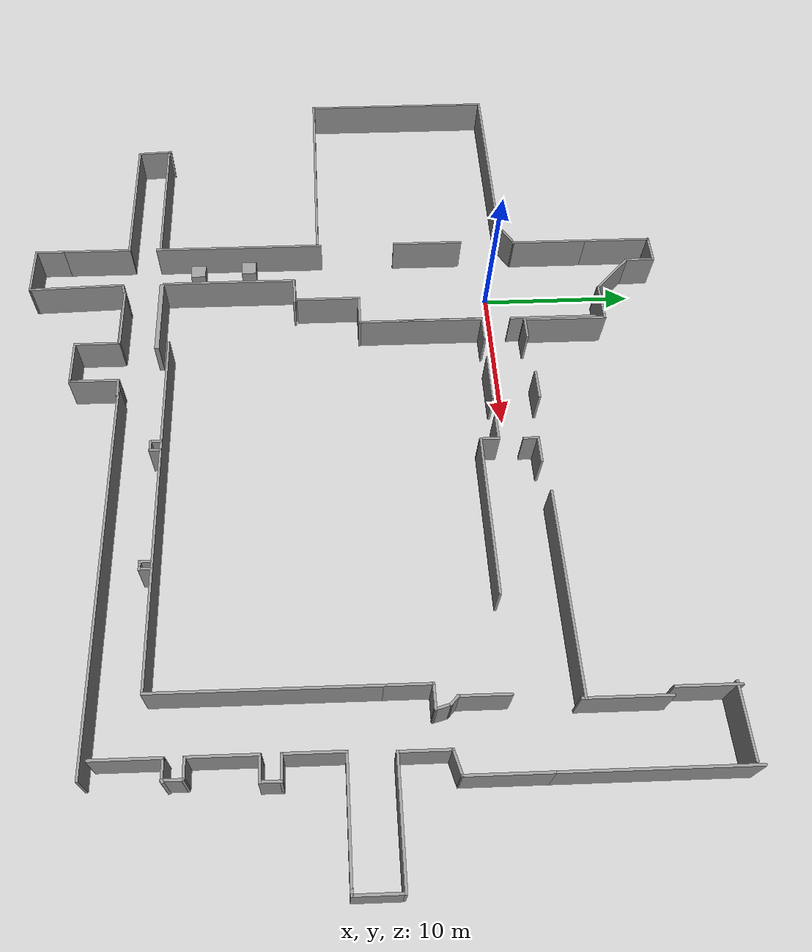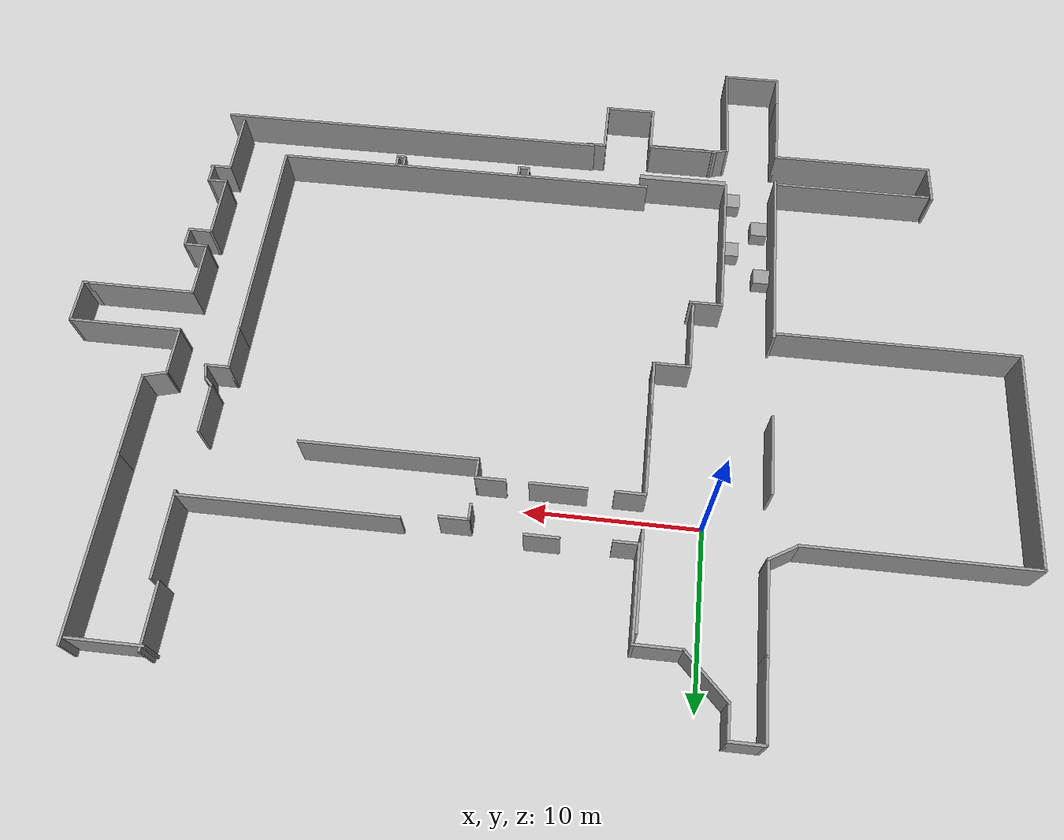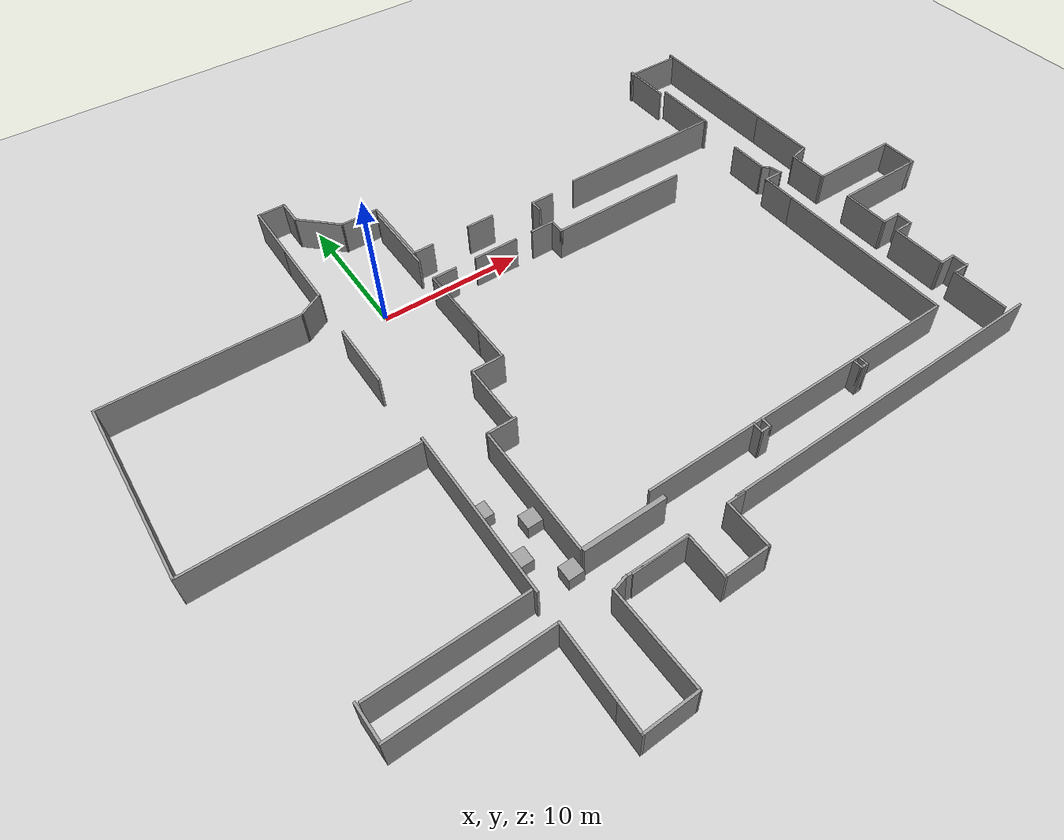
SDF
<sdf version="1.6">
 <world name="default">
  <light name="sun" type="directional">
   <pose>0 0 10 0 -0 0</pose>
   <diffuse>0.8 0.8 0.8 1</diffuse>
   <specular>0.2 0.2 0.2 1</specular>
   <attenuation>
    <range>1000</range>
    <constant>0.9</constant>
    <linear>0.01</linear>
    <quadratic>0.001</quadratic>
   </attenuation>
   <direction>-0.5 0.1 -0.9</direction>
  </light>
  <model name="ground_plane">
   <static>1</static>
   <link name="link">
    <collision name="collision">
     <geometry><plane><normal>0 0 1</normal><size>100 100</size></plane></geometry>
     <surface>
      <contact><collide_bitmask>65535</collide_bitmask></contact>
      <friction><ode><mu>100</mu><mu2>50</mu2></ode></friction>
     </surface>
    </collision>
    <visual name="visual">
     <cast_shadows>0</cast_shadows>
     <geometry><plane><normal>0 0 1</normal><size>100 100</size></plane></geometry>
     <material>
      <script><uri>file://media/materials/scripts/gazebo.material</uri><name>Gazebo/Grey</name></script>
     </material>
    </visual>
   </link>
  </model>
  <gravity>0 0 -9.8</gravity>
  <magnetic_field>6e-06 2.3e-05 -4.2e-05</magnetic_field>
  <atmosphere type="adiabatic"/>
  <physics name="default_physics" default="0" type="ode">
   <max_step_size>0.001</max_step_size>
   <real_time_factor>1</real_time_factor>
   <real_time_update_rate>1000</real_time_update_rate>
  </physics>
  <scene><ambient>0.4 0.4 0.4 1</ambient><background>0.7 0.7 0.7 1</background><shadows>1</shadows></scene>
  <audio><device>default</device></audio>
  <spherical_coordinates>
   <surface_model>EARTH_WGS84</surface_model>
   <latitude_deg>0</latitude_deg>
   <longitude_deg>0</longitude_deg>
   <elevation>0</elevation>
   <heading_deg>0</heading_deg>
  </spherical_coordinates>
  <model name="artificial_env">
   <pose>14.3004 -9.01126 0 0 -0 0</pose>
   <link name="Wall_10">
    <collision name="Wall_10_Collision">
     <geometry><box><size>4.75 0.15 2.5</size></box></geometry>
     <pose>0 0 1.25 0 -0 0</pose>
    </collision>
    <visual name="Wall_10_Visual">
     <pose>0 0 1.25 0 -0 0</pose>
     <geometry><box><size>4.75 0.15 2.5</size></box></geometry>
     <material>
      <script><uri>file://media/materials/scripts/gazebo.material</uri><name>Gazebo/Grey</name></script>
      <ambient>1 1 1 1</ambient>
     </material>
     <meta><layer>0</layer></meta>
    </visual>
    <pose>-17.758 5.05142 0 0 -0 -1.5708</pose>
   </link>
   <link name="Wall_12">
    <collision name="Wall_12_Collision">
     <geometry><box><size>5.75 0.15 2.5</size></box></geometry>
     <pose>0 0 1.25 0 -0 0</pose>
    </collision>
    <visual name="Wall_12_Visual">
     <pose>0 0 1.25 0 -0 0</pose>
     <geometry><box><size>5.75 0.15 2.5</size></box></geometry>
     <material>
      <script><uri>file://media/materials/scripts/gazebo.material</uri><name>Gazebo/Grey</name></script>
      <ambient>1 1 1 1</ambient>
     </material>
     <meta><layer>0</layer></meta>
    </visual>
    <pose>-10.9079 12.928 0 0 -0 1.5708</pose>
   </link>
   <link name="Wall_14">
    <collision name="Wall_14_Collision">
     <geometry><box><size>11.5 0.15 2.5</size></box></geometry>
     <pose>0 0 1.25 0 -0 0</pose>
    </collision>
    <visual name="Wall_14_Visual">
     <pose>0 0 1.25 0 -0 0</pose>
     <geometry><box><size>11.5 0.15 2.5</size></box></geometry>
     <material>
      <script><uri>file://media/materials/scripts/gazebo.material</uri><name>Gazebo/Grey</name></script>
      <ambient>1 1 1 1</ambient>
     </material>
     <meta><layer>0</layer></meta>
    </visual>
    <pose>-17.7755 -8.11839 0 0 -0 -1.5708</pose>
   </link>
   <link name="Wall_28">
    <collision name="Wall_28_Collision">
     <geometry><box><size>4.25 0.15 2.5</size></box></geometry>
     <pose>0 0 1.25 0 -0 0</pose>
    </collision>
    <visual name="Wall_28_Visual">
     <pose>0 0 1.25 0 -0 0</pose>
     <geometry><box><size>4.25 0.15 2.5</size></box></geometry>
     <material>
      <script><uri>file://media/materials/scripts/gazebo.material</uri><name>Gazebo/Grey</name></script>
      <ambient>1 1 1 1</ambient>
     </material>
     <meta><layer>0</layer></meta>
    </visual>
    <pose>-11.8671 -15.728 0 0 -0 3.14159</pose>
   </link>
   <link name="Wall_30">
    <collision name="Wall_30_Collision">
     <geometry><box><size>5.4 0.3 2.5</size></box></geometry>
     <pose>0 0 1.25 0 -0 0</pose>
    </collision>
    <visual name="Wall_30_Visual">
     <pose>0 0 1.25 0 -0 0</pose>
     <geometry><box><size>5.4 0.3 2.5</size></box></geometry>
     <material>
      <script><uri>file://media/materials/scripts/gazebo.material</uri><name>Gazebo/Grey</name></script>
      <ambient>1 1 1 1</ambient>
     </material>
     <meta><layer>0</layer></meta>
    </visual>
    <pose>-11.9185 -13.2739 0 0 -0 0</pose>
   </link>
   <link name="Wall_4">
    <collision name="Wall_4_Collision">
     <geometry><box><size>5.5 0.15 2.5</size></box></geometry>
     <pose>0 0 1.25 0 -0 0</pose>
    </collision>
    <visual name="Wall_4_Visual">
     <pose>0 0 1.25 0 -0 0</pose>
     <geometry><box><size>5.5 0.15 2.5</size></box></geometry>
     <material>
      <script><uri>file://media/materials/scripts/gazebo.material</uri><name>Gazebo/Grey</name></script>
      <ambient>1 1 1 1</ambient>
     </material>
     <meta><layer>0</layer></meta>
    </visual>
    <pose>-10.9304 5.41626 0 0 -0 -1.5708</pose>
   </link>
   <link name="Wall_42">
    <collision name="Wall_42_Collision">
     <geometry><box><size>24 0.15 2.5</size></box></geometry>
     <pose>0 0 1.25 0 -0 0</pose>
    </collision>
    <visual name="Wall_42_Visual">
     <pose>0 0 1.25 0 -0 0</pose>
     <geometry><box><size>24 0.15 2.5</size></box></geometry>
     <material>
      <script><uri>file://media/materials/scripts/gazebo.material</uri><name>Gazebo/Grey</name></script>
      <ambient>1 1 1 1</ambient>
     </material>
     <meta><layer>0</layer></meta>
    </visual>
    <pose>5.85049 -15.4683 0 0 -0 0</pose>
   </link>
   <static>1</static>
  </model>
  <model name="Untitled">
   <pose>10.0384 -9.8235 0 0 -0 0</pose>
   <link name="Wall_10">
    <collision name="Wall_10_Collision">
     <geometry><box><size>2 0.15 2.5</size></box></geometry>
     <pose>0 0 1.25 0 -0 0</pose>
    </collision>
    <visual name="Wall_10_Visual">
     <pose>0 0 1.25 0 -0 0</pose>
     <geometry><box><size>2 0.15 2.5</size></box></geometry>
     <material>
      <script><uri>file://media/materials/scripts/gazebo.material</uri><name>Gazebo/Grey</name></script>
      <ambient>1 1 1 1</ambient>
     </material>
     <meta><layer>0</layer></meta>
    </visual>
    <pose>-11.4683 20.4534 0 0 -0 -1.5708</pose>
   </link>
   <link name="Wall_100">
    <collision name="Wall_100_Collision">
     <geometry><box><size>6.75 0.15 2.5</size></box></geometry>
     <pose>0 0 1.25 0 -0 0</pose>
    </collision>
    <visual name="Wall_100_Visual">
     <pose>0 0 1.25 0 -0 0</pose>
     <geometry><box><size>6.75 0.15 2.5</size></box></geometry>
     <material>
      <script><uri>file://media/materials/scripts/gazebo.material</uri><name>Gazebo/Grey</name></script>
      <ambient>1 1 1 1</ambient>
     </material>
     <meta><layer>0</layer></meta>
    </visual>
    <pose>24.4804 1.61539 0 0 -0 3.14159</pose>
   </link>
   <link name="Wall_101">
    <collision name="Wall_101_Collision">
     <geometry><box><size>3 0.15 2.5</size></box></geometry>
     <pose>0 0 1.25 0 -0 0</pose>
    </collision>
    <visual name="Wall_101_Visual">
     <pose>0 0 1.25 0 -0 0</pose>
     <geometry><box><size>3 0.15 2.5</size></box></geometry>
     <material>
      <script><uri>file://media/materials/scripts/gazebo.material</uri><name>Gazebo/Grey</name></script>
      <ambient>1 1 1 1</ambient>
     </material>
     <meta><layer>0</layer></meta>
    </visual>
    <pose>21.1804 3.04039 0 0 -0 1.5708</pose>
   </link>
   <link name="Wall_103">
    <collision name="Wall_103_Collision">
     <geometry><box><size>2.75 0.15 2.5</size></box></geometry>
     <pose>0 0 1.25 0 -0 0</pose>
    </collision>
    <visual name="Wall_103_Visual">
     <pose>0 0 1.25 0 -0 0</pose>
     <geometry><box><size>2.75 0.15 2.5</size></box></geometry>
     <material>
      <script><uri>file://media/materials/scripts/gazebo.material</uri><name>Gazebo/Grey</name></script>
      <ambient>1 1 1 1</ambient>
     </material>
     <meta><layer>0</layer></meta>
    </visual>
    <pose>17.7291 2.44864 0 0 -0 1.5708</pose>
   </link>
   <link name="Wall_104">
    <collision name="Wall_104_Collision">
     <geometry><box><size>1.5 0.15 2.5</size></box></geometry>
     <pose>0 0 1.25 0 -0 0</pose>
    </collision>
    <visual name="Wall_104_Visual">
     <pose>0 0 1.25 0 -0 0</pose>
     <geometry><box><size>1.5 0.15 2.5</size></box></geometry>
     <material>
      <script><uri>file://media/materials/scripts/gazebo.material</uri><name>Gazebo/Grey</name></script>
      <ambient>1 1 1 1</ambient>
     </material>
     <meta><layer>0</layer></meta>
    </visual>
    <pose>18.4041 3.74864 0 0 -0 0</pose>
   </link>
   <link name="Wall_105">
    <collision name="Wall_105_Collision">
     <geometry><box><size>1 0.15 2.5</size></box></geometry>
     <pose>0 0 1.25 0 -0 0</pose>
    </collision>
    <visual name="Wall_105_Visual">
     <pose>0 0 1.25 0 -0 0</pose>
     <geometry><box><size>1 0.15 2.5</size></box></geometry>
     <material>
      <script><uri>file://media/materials/scripts/gazebo.material</uri><name>Gazebo/Grey</name></script>
      <ambient>1 1 1 1</ambient>
     </material>
     <meta><layer>0</layer></meta>
    </visual>
    <pose>18.9691 4.15916 0 0 -0 1.8326</pose>
   </link>
   <link name="Wall_106">
    <collision name="Wall_106_Collision">
     <geometry><box><size>0.75 0.15 2.5</size></box></geometry>
     <pose>0 0 1.25 0 -0 0</pose>
    </collision>
    <visual name="Wall_106_Visual">
     <pose>0 0 1.25 0 -0 0</pose>
     <geometry><box><size>0.75 0.15 2.5</size></box></geometry>
     <material>
      <script><uri>file://media/materials/scripts/gazebo.material</uri><name>Gazebo/Grey</name></script>
      <ambient>1 1 1 1</ambient>
     </material>
     <meta><layer>0</layer></meta>
    </visual>
    <pose>18.647 4.78181 0 0 -0 2.35619</pose>
   </link>
   <link name="Wall_107">
    <collision name="Wall_107_Collision">
     <geometry><box><size>3 0.15 2.5</size></box></geometry>
     <pose>0 0 1.25 0 -0 0</pose>
    </collision>
    <visual name="Wall_107_Visual">
     <pose>0 0 1.25 0 -0 0</pose>
     <geometry><box><size>3 0.15 2.5</size></box></geometry>
     <material>
      <script><uri>file://media/materials/scripts/gazebo.material</uri><name>Gazebo/Grey</name></script>
      <ambient>1 1 1 1</ambient>
     </material>
     <meta><layer>0</layer></meta>
    </visual>
    <pose>18.4348 6.41894 0 0 -0 1.5708</pose>
   </link>
   <link name="Wall_11">
    <collision name="Wall_11_Collision">
     <geometry><box><size>3.5 0.15 2.5</size></box></geometry>
     <pose>0 0 1.25 0 -0 0</pose>
    </collision>
    <visual name="Wall_11_Visual">
     <pose>0 0 1.25 0 -0 0</pose>
     <geometry><box><size>3.5 0.15 2.5</size></box></geometry>
     <material>
      <script><uri>file://media/materials/scripts/gazebo.material</uri><name>Gazebo/Grey</name></script>
      <ambient>1 1 1 1</ambient>
     </material>
     <meta><layer>0</layer></meta>
    </visual>
    <pose>-10.2839 18.344 0 0 -0 -0.785398</pose>
   </link>
   <link name="Wall_110">
    <collision name="Wall_110_Collision">
     <geometry><box><size>1.5 0.15 2.5</size></box></geometry>
     <pose>0 0 1.25 0 -0 0</pose>
    </collision>
    <visual name="Wall_110_Visual">
     <pose>0 0 1.25 0 -0 0</pose>
     <geometry><box><size>1.5 0.15 2.5</size></box></geometry>
     <material>
      <script><uri>file://media/materials/scripts/gazebo.material</uri><name>Gazebo/Grey</name></script>
      <ambient>1 1 1 1</ambient>
     </material>
     <meta><layer>0</layer></meta>
    </visual>
    <pose>21.8324 4.64009 0 0 -0 0.261799</pose>
   </link>
   <link name="Wall_111">
    <collision name="Wall_111_Collision">
     <geometry><box><size>5 0.15 2.5</size></box></geometry>
     <pose>0 0 1.25 0 -0 0</pose>
    </collision>
    <visual name="Wall_111_Visual">
     <pose>0 0 1.25 0 -0 0</pose>
     <geometry><box><size>5 0.15 2.5</size></box></geometry>
     <material>
      <script><uri>file://media/materials/scripts/gazebo.material</uri><name>Gazebo/Grey</name></script>
      <ambient>1 1 1 1</ambient>
     </material>
     <meta><layer>0</layer></meta>
    </visual>
    <pose>22.4844 7.2398 0 0 -0 1.5708</pose>
   </link>
   <link name="Wall_112">
    <collision name="Wall_112_Collision">
     <geometry><box><size>10.75 0.15 2.5</size></box></geometry>
     <pose>0 0 1.25 0 -0 0</pose>
    </collision>
    <visual name="Wall_112_Visual">
     <pose>0 0 1.25 0 -0 0</pose>
     <geometry><box><size>10.75 0.15 2.5</size></box></geometry>
     <material>
      <script><uri>file://media/materials/scripts/gazebo.material</uri><name>Gazebo/Grey</name></script>
      <ambient>1 1 1 1</ambient>
     </material>
     <meta><layer>0</layer></meta>
    </visual>
    <pose>22.4844 14.9648 0 0 -0 1.5708</pose>
   </link>
   <link name="Wall_114">
    <collision name="Wall_114_Collision">
     <geometry><box><size>4.25 0.15 2.5</size></box></geometry>
     <pose>0 0 1.25 0 -0 0</pose>
    </collision>
    <visual name="Wall_114_Visual">
     <pose>0 0 1.25 0 -0 0</pose>
     <geometry><box><size>4.25 0.15 2.5</size></box></geometry>
     <material>
      <script><uri>file://media/materials/scripts/gazebo.material</uri><name>Gazebo/Grey</name></script>
      <ambient>1 1 1 1</ambient>
     </material>
     <meta><layer>0</layer></meta>
    </visual>
    <pose>20.2302 19.902 0 0 -0 3.14159</pose>
   </link>
   <link name="Wall_116">
    <collision name="Wall_116_Collision">
     <geometry><box><size>3.75 0.15 2.5</size></box></geometry>
     <pose>0 0 1.25 0 -0 0</pose>
    </collision>
    <visual name="Wall_116_Visual">
     <pose>0 0 1.25 0 -0 0</pose>
     <geometry><box><size>3.75 0.15 2.5</size></box></geometry>
     <material>
      <script><uri>file://media/materials/scripts/gazebo.material</uri><name>Gazebo/Grey</name></script>
      <ambient>1 1 1 1</ambient>
     </material>
     <meta><layer>0</layer></meta>
    </visual>
    <pose>18.32 18.3495 0 0 -0 -1.5708</pose>
   </link>
   <link name="Wall_118">
    <collision name="Wall_118_Collision">
     <geometry><box><size>5 0.15 2.5</size></box></geometry>
     <pose>0 0 1.25 0 -0 0</pose>
    </collision>
    <visual name="Wall_118_Visual">
     <pose>0 0 1.25 0 -0 0</pose>
     <geometry><box><size>5 0.15 2.5</size></box></geometry>
     <material>
      <script><uri>file://media/materials/scripts/gazebo.material</uri><name>Gazebo/Grey</name></script>
      <ambient>1 1 1 1</ambient>
     </material>
     <meta><layer>0</layer></meta>
    </visual>
    <pose>18.7779 13.9562 0 0 -0 -1.5708</pose>
   </link>
   <link name="Wall_12">
    <collision name="Wall_12_Collision">
     <geometry><box><size>2.75 0.15 2.5</size></box></geometry>
     <pose>0 0 1.25 0 -0 0</pose>
    </collision>
    <visual name="Wall_12_Visual">
     <pose>0 0 1.25 0 -0 0</pose>
     <geometry><box><size>2.75 0.15 2.5</size></box></geometry>
     <material>
      <script><uri>file://media/materials/scripts/gazebo.material</uri><name>Gazebo/Grey</name></script>
      <ambient>1 1 1 1</ambient>
     </material>
     <meta><layer>0</layer></meta>
    </visual>
    <pose>-7.79948 17.1596 0 0 -0 0</pose>
   </link>
   <link name="Wall_120">
    <collision name="Wall_120_Collision">
     <geometry><box><size>12.5 0.15 2.5</size></box></geometry>
     <pose>0 0 1.25 0 -0 0</pose>
    </collision>
    <visual name="Wall_120_Visual">
     <pose>0 0 1.25 0 -0 0</pose>
     <geometry><box><size>12.5 0.15 2.5</size></box></geometry>
     <material>
      <script><uri>file://media/materials/scripts/gazebo.material</uri><name>Gazebo/Grey</name></script>
      <ambient>1 1 1 1</ambient>
     </material>
     <meta><layer>0</layer></meta>
    </visual>
    <pose>12.6016 11.7118 0 0 -0 3.14159</pose>
   </link>
   <link name="Wall_122">
    <collision name="Wall_122_Collision">
     <geometry><box><size>1.75 0.15 2.5</size></box></geometry>
     <pose>0 0 1.25 0 -0 0</pose>
    </collision>
    <visual name="Wall_122_Visual">
     <pose>0 0 1.25 0 -0 0</pose>
     <geometry><box><size>1.75 0.15 2.5</size></box></geometry>
     <material>
      <script><uri>file://media/materials/scripts/gazebo.material</uri><name>Gazebo/Grey</name></script>
      <ambient>1 1 1 1</ambient>
     </material>
     <meta><layer>0</layer></meta>
    </visual>
    <pose>3.49469 11.4272 0 0 -0 0</pose>
   </link>
   <link name="Wall_124">
    <collision name="Wall_124_Collision">
     <geometry><box><size>1 0.15 2.5</size></box></geometry>
     <pose>0 0 1.25 0 -0 0</pose>
    </collision>
    <visual name="Wall_124_Visual">
     <pose>0 0 1.25 0 -0 0</pose>
     <geometry><box><size>1 0.15 2.5</size></box></geometry>
     <material>
      <script><uri>file://media/materials/scripts/gazebo.material</uri><name>Gazebo/Grey</name></script>
      <ambient>1 1 1 1</ambient>
     </material>
     <meta><layer>0</layer></meta>
    </visual>
    <pose>2.69469 11.0022 0 0 -0 -1.5708</pose>
   </link>
   <link name="Wall_13">
    <collision name="Wall_13_Collision">
     <geometry><box><size>5.5 0.15 2.5</size></box></geometry>
     <pose>0 0 1.25 0 -0 0</pose>
    </collision>
    <visual name="Wall_13_Visual">
     <pose>0 0 1.25 0 -0 0</pose>
     <geometry><box><size>5.5 0.15 2.5</size></box></geometry>
     <material>
      <script><uri>file://media/materials/scripts/gazebo.material</uri><name>Gazebo/Grey</name></script>
      <ambient>1 1 1 1</ambient>
     </material>
     <meta><layer>0</layer></meta>
    </visual>
    <pose>-6.49948 14.4846 0 0 -0 -1.5708</pose>
   </link>
   <link name="Wall_16">
    <collision name="Wall_16_Collision">
     <geometry><box><size>1.5 0.15 2.5</size></box></geometry>
     <pose>0 0 1.25 0 -0 0</pose>
    </collision>
    <visual name="Wall_16_Visual">
     <pose>0 0 1.25 0 -0 0</pose>
     <geometry><box><size>1.5 0.15 2.5</size></box></geometry>
     <material>
      <script><uri>file://media/materials/scripts/gazebo.material</uri><name>Gazebo/Grey</name></script>
      <ambient>1 1 1 1</ambient>
     </material>
     <meta><layer>0</layer></meta>
    </visual>
    <pose>-5.82449 11.8096 0 0 -0 0</pose>
   </link>
   <link name="Wall_20">
    <collision name="Wall_20_Collision">
     <geometry><box><size>2 0.15 2.5</size></box></geometry>
     <pose>0 0 1.25 0 -0 0</pose>
    </collision>
    <visual name="Wall_20_Visual">
     <pose>0 0 1.25 0 -0 0</pose>
     <geometry><box><size>2 0.15 2.5</size></box></geometry>
     <material>
      <script><uri>file://media/materials/scripts/gazebo.material</uri><name>Gazebo/Grey</name></script>
      <ambient>1 1 1 1</ambient>
     </material>
     <meta><layer>0</layer></meta>
    </visual>
    <pose>-1.29304 11.9436 0 0 -0 0</pose>
   </link>
   <link name="Wall_22">
    <collision name="Wall_22_Collision">
     <geometry><box><size>3.25 0.15 2.5</size></box></geometry>
     <pose>0 0 1.25 0 -0 0</pose>
    </collision>
    <visual name="Wall_22_Visual">
     <pose>0 0 1.25 0 -0 0</pose>
     <geometry><box><size>3.25 0.15 2.5</size></box></geometry>
     <material>
      <script><uri>file://media/materials/scripts/gazebo.material</uri><name>Gazebo/Grey</name></script>
      <ambient>1 1 1 1</ambient>
     </material>
     <meta><layer>0</layer></meta>
    </visual>
    <pose>-1.8986 8.99021 0 0 -0 0</pose>
   </link>
   <link name="Wall_24">
    <collision name="Wall_24_Collision">
     <geometry><box><size>1.75 0.15 2.5</size></box></geometry>
     <pose>0 0 1.25 0 -0 0</pose>
    </collision>
    <visual name="Wall_24_Visual">
     <pose>0 0 1.25 0 -0 0</pose>
     <geometry><box><size>1.75 0.15 2.5</size></box></geometry>
     <material>
      <script><uri>file://media/materials/scripts/gazebo.material</uri><name>Gazebo/Grey</name></script>
      <ambient>1 1 1 1</ambient>
     </material>
     <meta><layer>0</layer></meta>
    </visual>
    <pose>-5.84832 8.99021 0 0 -0 3.14159</pose>
   </link>
   <link name="Wall_26">
    <collision name="Wall_26_Collision">
     <geometry><box><size>1.75 0.15 2.5</size></box></geometry>
     <pose>0 0 1.25 0 -0 0</pose>
    </collision>
    <visual name="Wall_26_Visual">
     <pose>0 0 1.25 0 -0 0</pose>
     <geometry><box><size>1.75 0.15 2.5</size></box></geometry>
     <material>
      <script><uri>file://media/materials/scripts/gazebo.material</uri><name>Gazebo/Grey</name></script>
      <ambient>1 1 1 1</ambient>
     </material>
     <meta><layer>0</layer></meta>
    </visual>
    <pose>1.84294 8.99021 0 0 -0 0</pose>
   </link>
   <link name="Wall_28">
    <collision name="Wall_28_Collision">
     <geometry><box><size>1.25 0.15 2.5</size></box></geometry>
     <pose>0 0 1.25 0 -0 0</pose>
    </collision>
    <visual name="Wall_28_Visual">
     <pose>0 0 1.25 0 -0 0</pose>
     <geometry><box><size>1.25 0.15 2.5</size></box></geometry>
     <material>
      <script><uri>file://media/materials/scripts/gazebo.material</uri><name>Gazebo/Grey</name></script>
      <ambient>1 1 1 1</ambient>
     </material>
     <meta><layer>0</layer></meta>
    </visual>
    <pose>2.64294 8.44021 0 0 -0 -1.5708</pose>
   </link>
   <link name="Wall_30">
    <collision name="Wall_30_Collision">
     <geometry><box><size>10.25 0.15 2.5</size></box></geometry>
     <pose>0 0 1.25 0 -0 0</pose>
    </collision>
    <visual name="Wall_30_Visual">
     <pose>0 0 1.25 0 -0 0</pose>
     <geometry><box><size>10.25 0.15 2.5</size></box></geometry>
     <material>
      <script><uri>file://media/materials/scripts/gazebo.material</uri><name>Gazebo/Grey</name></script>
      <ambient>1 1 1 1</ambient>
     </material>
     <meta><layer>0</layer></meta>
    </visual>
    <pose>7.69294 7.89021 0 0 -0 0</pose>
   </link>
   <link name="Wall_32">
    <collision name="Wall_32_Collision">
     <geometry><box><size>13 0.15 2.5</size></box></geometry>
     <pose>0 0 1.25 0 -0 0</pose>
    </collision>
    <visual name="Wall_32_Visual">
     <pose>0 0 1.25 0 -0 0</pose>
     <geometry><box><size>13 0.15 2.5</size></box></geometry>
     <material>
      <script><uri>file://media/materials/scripts/gazebo.material</uri><name>Gazebo/Grey</name></script>
      <ambient>1 1 1 1</ambient>
     </material>
     <meta><layer>0</layer></meta>
    </visual>
    <pose>-21.3554 11.0034 0 0 -0 3.14159</pose>
   </link>
   <link name="Wall_33">
    <collision name="Wall_33_Collision">
     <geometry><box><size>13 0.15 2.5</size></box></geometry>
     <pose>0 0 1.25 0 -0 0</pose>
    </collision>
    <visual name="Wall_33_Visual">
     <pose>0 0 1.25 0 -0 0</pose>
     <geometry><box><size>13 0.15 2.5</size></box></geometry>
     <material>
      <script><uri>file://media/materials/scripts/gazebo.material</uri><name>Gazebo/Grey</name></script>
      <ambient>1 1 1 1</ambient>
     </material>
     <meta><layer>0</layer></meta>
    </visual>
    <pose>-27.7804 4.57839 0 0 -0 -1.5708</pose>
   </link>
   <link name="Wall_35">
    <collision name="Wall_35_Collision">
     <geometry><box><size>14.25 0.15 2.5</size></box></geometry>
     <pose>0 0 1.25 0 -0 0</pose>
    </collision>
    <visual name="Wall_35_Visual">
     <pose>0 0 1.25 0 -0 0</pose>
     <geometry><box><size>14.25 0.15 2.5</size></box></geometry>
     <material>
      <script><uri>file://media/materials/scripts/gazebo.material</uri><name>Gazebo/Grey</name></script>
      <ambient>1 1 1 1</ambient>
     </material>
     <meta><layer>0</layer></meta>
    </visual>
    <pose>-20.7304 -1.84661 0 0 -0 0</pose>
   </link>
   <link name="Wall_37">
    <collision name="Wall_37_Collision">
     <geometry><box><size>8.25 0.15 2.5</size></box></geometry>
     <pose>0 0 1.25 0 -0 0</pose>
    </collision>
    <visual name="Wall_37_Visual">
     <pose>0 0 1.25 0 -0 0</pose>
     <geometry><box><size>8.25 0.15 2.5</size></box></geometry>
     <material>
      <script><uri>file://media/materials/scripts/gazebo.material</uri><name>Gazebo/Grey</name></script>
      <ambient>1 1 1 1</ambient>
     </material>
     <meta><layer>0</layer></meta>
    </visual>
    <pose>-6.64832 4.94021 0 0 -0 -1.5708</pose>
   </link>
   <link name="Wall_4">
    <collision name="Wall_4_Collision">
     <geometry><box><size>2 0.15 2.5</size></box></geometry>
     <pose>0 0 1.25 0 -0 0</pose>
    </collision>
    <visual name="Wall_4_Visual">
     <pose>0 0 1.25 0 -0 0</pose>
     <geometry><box><size>2 0.15 2.5</size></box></geometry>
     <material>
      <script><uri>file://media/materials/scripts/gazebo.material</uri><name>Gazebo/Grey</name></script>
      <ambient>1 1 1 1</ambient>
     </material>
     <meta><layer>0</layer></meta>
    </visual>
    <pose>-14.1294 11.4659 0 0 -0 0.523599</pose>
   </link>
   <link name="Wall_40">
    <collision name="Wall_40_Collision">
     <geometry><box><size>2 0.15 2.5</size></box></geometry>
     <pose>0 0 1.25 0 -0 0</pose>
    </collision>
    <visual name="Wall_40_Visual">
     <pose>0 0 1.25 0 -0 0</pose>
     <geometry><box><size>2 0.15 2.5</size></box></geometry>
     <material>
      <script><uri>file://media/materials/scripts/gazebo.material</uri><name>Gazebo/Grey</name></script>
      <ambient>1 1 1 1</ambient>
     </material>
     <meta><layer>0</layer></meta>
    </visual>
    <pose>-9.47674 -3.48063 0 0 -0 3.14159</pose>
   </link>
   <link name="Wall_42">
    <collision name="Wall_42_Collision">
     <geometry><box><size>4.25 0.15 2.5</size></box></geometry>
     <pose>0 0 1.25 0 -0 0</pose>
    </collision>
    <visual name="Wall_42_Visual">
     <pose>0 0 1.25 0 -0 0</pose>
     <geometry><box><size>4.25 0.15 2.5</size></box></geometry>
     <material>
      <script><uri>file://media/materials/scripts/gazebo.material</uri><name>Gazebo/Grey</name></script>
      <ambient>1 1 1 1</ambient>
     </material>
     <meta><layer>0</layer></meta>
    </visual>
    <pose>-8.71448 -1.18652 0 0 -0 1.5708</pose>
   </link>
   <link name="Wall_43">
    <collision name="Wall_43_Collision">
     <geometry><box><size>2.25 0.15 2.5</size></box></geometry>
     <pose>0 0 1.25 0 -0 0</pose>
    </collision>
    <visual name="Wall_43_Visual">
     <pose>0 0 1.25 0 -0 0</pose>
     <geometry><box><size>2.25 0.15 2.5</size></box></geometry>
     <material>
      <script><uri>file://media/materials/scripts/gazebo.material</uri><name>Gazebo/Grey</name></script>
      <ambient>1 1 1 1</ambient>
     </material>
     <meta><layer>0</layer></meta>
    </visual>
    <pose>-7.66448 0.863483 0 0 -0 0</pose>
   </link>
   <link name="Wall_45">
    <collision name="Wall_45_Collision">
     <geometry><box><size>9 0.15 2.5</size></box></geometry>
     <pose>0 0 1.25 0 -0 0</pose>
    </collision>
    <visual name="Wall_45_Visual">
     <pose>0 0 1.25 0 -0 0</pose>
     <geometry><box><size>9 0.15 2.5</size></box></geometry>
     <material>
      <script><uri>file://media/materials/scripts/gazebo.material</uri><name>Gazebo/Grey</name></script>
      <ambient>1 1 1 1</ambient>
     </material>
     <meta><layer>0</layer></meta>
    </visual>
    <pose>-10.4017 -7.90563 0 0 -0 -1.5708</pose>
   </link>
   <link name="Wall_47">
    <collision name="Wall_47_Collision">
     <geometry><box><size>9.5 0.15 2.5</size></box></geometry>
     <pose>0 0 1.25 0 -0 0</pose>
    </collision>
    <visual name="Wall_47_Visual">
     <pose>0 0 1.25 0 -0 0</pose>
     <geometry><box><size>9.5 0.15 2.5</size></box></geometry>
     <material>
      <script><uri>file://media/materials/scripts/gazebo.material</uri><name>Gazebo/Grey</name></script>
      <ambient>1 1 1 1</ambient>
     </material>
     <meta><layer>0</layer></meta>
    </visual>
    <pose>-18.3557 -12.7566 0 0 -0 3.14159</pose>
   </link>
   <link name="Wall_49">
    <collision name="Wall_49_Collision">
     <geometry><box><size>2.32222 0.15 2.5</size></box></geometry>
     <pose>0 0 1.25 0 -0 0</pose>
    </collision>
    <visual name="Wall_49_Visual">
     <pose>0 0 1.25 0 -0 0</pose>
     <geometry><box><size>2.32222 0.15 2.5</size></box></geometry>
     <material>
      <script><uri>file://media/materials/scripts/gazebo.material</uri><name>Gazebo/Grey</name></script>
      <ambient>1 1 1 1</ambient>
     </material>
     <meta><layer>0</layer></meta>
    </visual>
    <pose>-23.2044 -13.7338 0 0 -0 -1.52123</pose>
   </link>
   <link name="Wall_50">
    <collision name="Wall_50_Collision">
     <geometry><box><size>9.75 0.15 2.5</size></box></geometry>
     <pose>0 0 1.25 0 -0 0</pose>
    </collision>
    <visual name="Wall_50_Visual">
     <pose>0 0 1.25 0 -0 0</pose>
     <geometry><box><size>9.75 0.15 2.5</size></box></geometry>
     <material>
      <script><uri>file://media/materials/scripts/gazebo.material</uri><name>Gazebo/Grey</name></script>
      <ambient>1 1 1 1</ambient>
     </material>
     <meta><layer>0</layer></meta>
    </visual>
    <pose>-18.3506 -14.9262 0 0 -0 0</pose>
   </link>
   <link name="Wall_52">
    <collision name="Wall_52_Collision">
     <geometry><box><size>4.75 0.15 2.5</size></box></geometry>
     <pose>0 0 1.25 0 -0 0</pose>
    </collision>
    <visual name="Wall_52_Visual">
     <pose>0 0 1.25 0 -0 0</pose>
     <geometry><box><size>4.75 0.15 2.5</size></box></geometry>
     <material>
      <script><uri>file://media/materials/scripts/gazebo.material</uri><name>Gazebo/Grey</name></script>
      <ambient>1 1 1 1</ambient>
     </material>
     <meta><layer>0</layer></meta>
    </visual>
    <pose>-13.5506 -17.2262 0 0 -0 -1.5708</pose>
   </link>
   <link name="Wall_53">
    <collision name="Wall_53_Collision">
     <geometry><box><size>2 0.15 2.5</size></box></geometry>
     <pose>0 0 1.25 0 -0 0</pose>
    </collision>
    <visual name="Wall_53_Visual">
     <pose>0 0 1.25 0 -0 0</pose>
     <geometry><box><size>2 0.15 2.5</size></box></geometry>
     <material>
      <script><uri>file://media/materials/scripts/gazebo.material</uri><name>Gazebo/Grey</name></script>
      <ambient>1 1 1 1</ambient>
     </material>
     <meta><layer>0</layer></meta>
    </visual>
    <pose>-13.5506 -20.4512 0 0 -0 -1.5708</pose>
   </link>
   <link name="Wall_54">
    <collision name="Wall_54_Collision">
     <geometry><box><size>3.5 0.15 2.5</size></box></geometry>
     <pose>0 0 1.25 0 -0 0</pose>
    </collision>
    <visual name="Wall_54_Visual">
     <pose>0 0 1.25 0 -0 0</pose>
     <geometry><box><size>3.5 0.15 2.5</size></box></geometry>
     <material>
      <script><uri>file://media/materials/scripts/gazebo.material</uri><name>Gazebo/Grey</name></script>
      <ambient>1 1 1 1</ambient>
     </material>
     <meta><layer>0</layer></meta>
    </visual>
    <pose>-11.8756 -21.3762 0 0 -0 0</pose>
   </link>
   <link name="Wall_55">
    <collision name="Wall_55_Collision">
     <geometry><box><size>6.40922 0.15 2.5</size></box></geometry>
     <pose>0 0 1.25 0 -0 0</pose>
    </collision>
    <visual name="Wall_55_Visual">
     <pose>0 0 1.25 0 -0 0</pose>
     <geometry><box><size>6.40922 0.15 2.5</size></box></geometry>
     <material>
      <script><uri>file://media/materials/scripts/gazebo.material</uri><name>Gazebo/Grey</name></script>
      <ambient>1 1 1 1</ambient>
     </material>
     <meta><layer>0</layer></meta>
    </visual>
    <pose>-10.2942 -18.248 0 0 -0 1.6007</pose>
   </link>
   <link name="Wall_56">
    <collision name="Wall_56_Collision">
     <geometry><box><size>1 0.15 2.5</size></box></geometry>
     <pose>0 0 1.25 0 -0 0</pose>
    </collision>
    <visual name="Wall_56_Visual">
     <pose>0 0 1.25 0 -0 0</pose>
     <geometry><box><size>1 0.15 2.5</size></box></geometry>
     <material>
      <script><uri>file://media/materials/scripts/gazebo.material</uri><name>Gazebo/Grey</name></script>
      <ambient>1 1 1 1</ambient>
     </material>
     <meta><layer>0</layer></meta>
    </visual>
    <pose>-9.88368 -15.0098 0 0 -0 0.261799</pose>
   </link>
   <link name="Wall_58">
    <collision name="Wall_58_Collision">
     <geometry><box><size>3.75 0.15 2.5</size></box></geometry>
     <pose>0 0 1.25 0 -0 0</pose>
    </collision>
    <visual name="Wall_58_Visual">
     <pose>0 0 1.25 0 -0 0</pose>
     <geometry><box><size>3.75 0.15 2.5</size></box></geometry>
     <material>
      <script><uri>file://media/materials/scripts/gazebo.material</uri><name>Gazebo/Grey</name></script>
      <ambient>1 1 1 1</ambient>
     </material>
     <meta><layer>0</layer></meta>
    </visual>
    <pose>-7.27116 -14.9747 0 0 -0 0</pose>
   </link>
   <link name="Wall_59">
    <collision name="Wall_59_Collision">
     <geometry><box><size>3 0.15 2.5</size></box></geometry>
     <pose>0 0 1.25 0 -0 0</pose>
    </collision>
    <visual name="Wall_59_Visual">
     <pose>0 0 1.25 0 -0 0</pose>
     <geometry><box><size>3 0.15 2.5</size></box></geometry>
     <material>
      <script><uri>file://media/materials/scripts/gazebo.material</uri><name>Gazebo/Grey</name></script>
      <ambient>1 1 1 1</ambient>
     </material>
     <meta><layer>0</layer></meta>
    </visual>
    <pose>-5.47116 -16.3997 0 0 -0 -1.5708</pose>
   </link>
   <link name="Wall_6">
    <collision name="Wall_6_Collision">
     <geometry><box><size>5.25 0.15 2.5</size></box></geometry>
     <pose>0 0 1.25 0 -0 0</pose>
    </collision>
    <visual name="Wall_6_Visual">
     <pose>0 0 1.25 0 -0 0</pose>
     <geometry><box><size>5.25 0.15 2.5</size></box></geometry>
     <material>
      <script><uri>file://media/materials/scripts/gazebo.material</uri><name>Gazebo/Grey</name></script>
      <ambient>1 1 1 1</ambient>
     </material>
     <meta><layer>0</layer></meta>
    </visual>
    <pose>-13.3283 14.4784 0 0 -0 1.5708</pose>
   </link>
   <link name="Wall_60">
    <collision name="Wall_60_Collision">
     <geometry><box><size>3 0.15 2.5</size></box></geometry>
     <pose>0 0 1.25 0 -0 0</pose>
    </collision>
    <visual name="Wall_60_Visual">
     <pose>0 0 1.25 0 -0 0</pose>
     <geometry><box><size>3 0.15 2.5</size></box></geometry>
     <material>
      <script><uri>file://media/materials/scripts/gazebo.material</uri><name>Gazebo/Grey</name></script>
      <ambient>1 1 1 1</ambient>
     </material>
     <meta><layer>0</layer></meta>
    </visual>
    <pose>-4.04616 -17.8247 0 0 -0 0</pose>
   </link>
   <link name="Wall_61">
    <collision name="Wall_61_Collision">
     <geometry><box><size>0.25 0.15 2.5</size></box></geometry>
     <pose>0 0 1.25 0 -0 0</pose>
    </collision>
    <visual name="Wall_61_Visual">
     <pose>0 0 1.25 0 -0 0</pose>
     <geometry><box><size>0.25 0.15 2.5</size></box></geometry>
     <material>
      <script><uri>file://media/materials/scripts/gazebo.material</uri><name>Gazebo/Grey</name></script>
      <ambient>1 1 1 1</ambient>
     </material>
     <meta><layer>0</layer></meta>
    </visual>
    <pose>-2.57116 -17.8247 0 0 -0 0</pose>
   </link>
   <link name="Wall_62">
    <collision name="Wall_62_Collision">
     <geometry><box><size>3.25 0.15 2.5</size></box></geometry>
     <pose>0 0 1.25 0 -0 0</pose>
    </collision>
    <visual name="Wall_62_Visual">
     <pose>0 0 1.25 0 -0 0</pose>
     <geometry><box><size>3.25 0.15 2.5</size></box></geometry>
     <material>
      <script><uri>file://media/materials/scripts/gazebo.material</uri><name>Gazebo/Grey</name></script>
      <ambient>1 1 1 1</ambient>
     </material>
     <meta><layer>0</layer></meta>
    </visual>
    <pose>-2.52116 -16.2747 0 0 -0 1.5708</pose>
   </link>
   <link name="Wall_63">
    <collision name="Wall_63_Collision">
     <geometry><box><size>1.25 0.15 2.5</size></box></geometry>
     <pose>0 0 1.25 0 -0 0</pose>
    </collision>
    <visual name="Wall_63_Visual">
     <pose>0 0 1.25 0 -0 0</pose>
     <geometry><box><size>1.25 0.15 2.5</size></box></geometry>
     <material>
      <script><uri>file://media/materials/scripts/gazebo.material</uri><name>Gazebo/Grey</name></script>
      <ambient>1 1 1 1</ambient>
     </material>
     <meta><layer>0</layer></meta>
    </visual>
    <pose>-1.97116 -14.7247 0 0 -0 0</pose>
   </link>
   <link name="Wall_65">
    <collision name="Wall_65_Collision">
     <geometry><box><size>23.25 0.15 2.5</size></box></geometry>
     <pose>0 0 1.25 0 -0 0</pose>
    </collision>
    <visual name="Wall_65_Visual">
     <pose>0 0 1.25 0 -0 0</pose>
     <geometry><box><size>23.25 0.15 2.5</size></box></geometry>
     <material>
      <script><uri>file://media/materials/scripts/gazebo.material</uri><name>Gazebo/Grey</name></script>
      <ambient>1 1 1 1</ambient>
     </material>
     <meta><layer>0</layer></meta>
    </visual>
    <pose>6.1791 -11.7014 0 0 -0 0</pose>
   </link>
   <link name="Wall_7">
    <collision name="Wall_7_Collision">
     <geometry><box><size>4.5 0.15 2.5</size></box></geometry>
     <pose>0 0 1.25 0 -0 0</pose>
    </collision>
    <visual name="Wall_7_Visual">
     <pose>0 0 1.25 0 -0 0</pose>
     <geometry><box><size>4.5 0.15 2.5</size></box></geometry>
     <material>
      <script><uri>file://media/materials/scripts/gazebo.material</uri><name>Gazebo/Grey</name></script>
      <ambient>1 1 1 1</ambient>
     </material>
     <meta><layer>0</layer></meta>
    </visual>
    <pose>-13.3283 19.2034 0 0 -0 1.5708</pose>
   </link>
   <link name="Wall_70">
    <collision name="Wall_70_Collision">
     <geometry><box><size>0.75 0.15 2.5</size></box></geometry>
     <pose>0 0 1.25 0 -0 0</pose>
    </collision>
    <visual name="Wall_70_Visual">
     <pose>0 0 1.25 0 -0 0</pose>
     <geometry><box><size>0.75 0.15 2.5</size></box></geometry>
     <material>
      <script><uri>file://media/materials/scripts/gazebo.material</uri><name>Gazebo/Grey</name></script>
      <ambient>1 1 1 1</ambient>
     </material>
     <meta><layer>0</layer></meta>
    </visual>
    <pose>2.73306 -12.0501 0 0 -0 1.5708</pose>
   </link>
   <link name="Wall_72">
    <collision name="Wall_72_Collision">
     <geometry><box><size>0.75 0.15 2.5</size></box></geometry>
     <pose>0 0 1.25 0 -0 0</pose>
    </collision>
    <visual name="Wall_72_Visual">
     <pose>0 0 1.25 0 -0 0</pose>
     <geometry><box><size>0.75 0.15 2.5</size></box></geometry>
     <material>
      <script><uri>file://media/materials/scripts/gazebo.material</uri><name>Gazebo/Grey</name></script>
      <ambient>1 1 1 1</ambient>
     </material>
     <meta><layer>0</layer></meta>
    </visual>
    <pose>2.43306 -12.3501 0 0 -0 3.14159</pose>
   </link>
   <link name="Wall_73">
    <collision name="Wall_73_Collision">
     <geometry><box><size>0.75 0.15 2.5</size></box></geometry>
     <pose>0 0 1.25 0 -0 0</pose>
    </collision>
    <visual name="Wall_73_Visual">
     <pose>0 0 1.25 0 -0 0</pose>
     <geometry><box><size>0.75 0.15 2.5</size></box></geometry>
     <material>
      <script><uri>file://media/materials/scripts/gazebo.material</uri><name>Gazebo/Grey</name></script>
      <ambient>1 1 1 1</ambient>
     </material>
     <meta><layer>0</layer></meta>
    </visual>
    <pose>2.13306 -12.0501 0 0 -0 1.5708</pose>
   </link>
   <link name="Wall_75">
    <collision name="Wall_75_Collision">
     <geometry><box><size>0.75 0.15 2.5</size></box></geometry>
     <pose>0 0 1.25 0 -0 0</pose>
    </collision>
    <visual name="Wall_75_Visual">
     <pose>0 0 1.25 0 -0 0</pose>
     <geometry><box><size>0.75 0.15 2.5</size></box></geometry>
     <material>
      <script><uri>file://media/materials/scripts/gazebo.material</uri><name>Gazebo/Grey</name></script>
      <ambient>1 1 1 1</ambient>
     </material>
     <meta><layer>0</layer></meta>
    </visual>
    <pose>10.132 -12.1016 0 0 -0 -1.5708</pose>
   </link>
   <link name="Wall_77">
    <collision name="Wall_77_Collision">
     <geometry><box><size>0.5 0.15 2.5</size></box></geometry>
     <pose>0 0 1.25 0 -0 0</pose>
    </collision>
    <visual name="Wall_77_Visual">
     <pose>0 0 1.25 0 -0 0</pose>
     <geometry><box><size>0.5 0.15 2.5</size></box></geometry>
     <material>
      <script><uri>file://media/materials/scripts/gazebo.material</uri><name>Gazebo/Grey</name></script>
      <ambient>1 1 1 1</ambient>
     </material>
     <meta><layer>0</layer></meta>
    </visual>
    <pose>10.307 -12.4016 0 0 -0 0</pose>
   </link>
   <link name="Wall_78">
    <collision name="Wall_78_Collision">
     <geometry><box><size>0.25 0.15 2.5</size></box></geometry>
     <pose>0 0 1.25 0 -0 0</pose>
    </collision>
    <visual name="Wall_78_Visual">
     <pose>0 0 1.25 0 -0 0</pose>
     <geometry><box><size>0.25 0.15 2.5</size></box></geometry>
     <material>
      <script><uri>file://media/materials/scripts/gazebo.material</uri><name>Gazebo/Grey</name></script>
      <ambient>1 1 1 1</ambient>
     </material>
     <meta><layer>0</layer></meta>
    </visual>
    <pose>10.532 -12.4016 0 0 -0 0</pose>
   </link>
   <link name="Wall_79">
    <collision name="Wall_79_Collision">
     <geometry><box><size>0.75 0.15 2.5</size></box></geometry>
     <pose>0 0 1.25 0 -0 0</pose>
    </collision>
    <visual name="Wall_79_Visual">
     <pose>0 0 1.25 0 -0 0</pose>
     <geometry><box><size>0.75 0.15 2.5</size></box></geometry>
     <material>
      <script><uri>file://media/materials/scripts/gazebo.material</uri><name>Gazebo/Grey</name></script>
      <ambient>1 1 1 1</ambient>
     </material>
     <meta><layer>0</layer></meta>
    </visual>
    <pose>10.582 -12.1016 0 0 -0 1.5708</pose>
   </link>
   <link name="Wall_8">
    <collision name="Wall_8_Collision">
     <geometry><box><size>0.16 0.15 2.5</size></box></geometry>
     <pose>0 0 1.25 0 -0 0</pose>
    </collision>
    <visual name="Wall_8_Visual">
     <pose>0 0 1.25 0 -0 0</pose>
     <geometry><box><size>0.16 0.15 2.5</size></box></geometry>
     <material>
      <script><uri>file://media/materials/scripts/gazebo.material</uri><name>Gazebo/Grey</name></script>
      <ambient>1 1 1 1</ambient>
     </material>
     <meta><layer>0</layer></meta>
    </visual>
    <pose>-13.3233 21.3784 0 0 -0 0</pose>
   </link>
   <link name="Wall_81">
    <collision name="Wall_81_Collision">
     <geometry><box><size>4 0.15 2.5</size></box></geometry>
     <pose>0 0 1.25 0 -0 0</pose>
    </collision>
    <visual name="Wall_81_Visual">
     <pose>0 0 1.25 0 -0 0</pose>
     <geometry><box><size>4 0.15 2.5</size></box></geometry>
     <material>
      <script><uri>file://media/materials/scripts/gazebo.material</uri><name>Gazebo/Grey</name></script>
      <ambient>1 1 1 1</ambient>
     </material>
     <meta><layer>0</layer></meta>
    </visual>
    <pose>21.0804 -12.3096 0 0 -0 1.5708</pose>
   </link>
   <link name="Wall_83">
    <collision name="Wall_83_Collision">
     <geometry><box><size>13 0.15 2.5</size></box></geometry>
     <pose>0 0 1.25 0 -0 0</pose>
    </collision>
    <visual name="Wall_83_Visual">
     <pose>0 0 1.25 0 -0 0</pose>
     <geometry><box><size>13 0.15 2.5</size></box></geometry>
     <material>
      <script><uri>file://media/materials/scripts/gazebo.material</uri><name>Gazebo/Grey</name></script>
      <ambient>1 1 1 1</ambient>
     </material>
     <meta><layer>0</layer></meta>
    </visual>
    <pose>17.7291 -5.27636 0 0 -0 1.5708</pose>
   </link>
   <link name="Wall_85">
    <collision name="Wall_85_Collision">
     <geometry><box><size>1.25 0.15 2.5</size></box></geometry>
     <pose>0 0 1.25 0 -0 0</pose>
    </collision>
    <visual name="Wall_85_Visual">
     <pose>0 0 1.25 0 -0 0</pose>
     <geometry><box><size>1.25 0.15 2.5</size></box></geometry>
     <material>
      <script><uri>file://media/materials/scripts/gazebo.material</uri><name>Gazebo/Grey</name></script>
      <ambient>1 1 1 1</ambient>
     </material>
     <meta><layer>0</layer></meta>
    </visual>
    <pose>21.6304 -10.3846 0 0 -0 0</pose>
   </link>
   <link name="Wall_86">
    <collision name="Wall_86_Collision">
     <geometry><box><size>0.25 0.15 2.5</size></box></geometry>
     <pose>0 0 1.25 0 -0 0</pose>
    </collision>
    <visual name="Wall_86_Visual">
     <pose>0 0 1.25 0 -0 0</pose>
     <geometry><box><size>0.25 0.15 2.5</size></box></geometry>
     <material>
      <script><uri>file://media/materials/scripts/gazebo.material</uri><name>Gazebo/Grey</name></script>
      <ambient>1 1 1 1</ambient>
     </material>
     <meta><layer>0</layer></meta>
    </visual>
    <pose>22.2237 -10.3596 0 0 -0 0.523599</pose>
   </link>
   <link name="Wall_89">
    <collision name="Wall_89_Collision">
     <geometry><box><size>1.25 0.15 2.5</size></box></geometry>
     <pose>0 0 1.25 0 -0 0</pose>
    </collision>
    <visual name="Wall_89_Visual">
     <pose>0 0 1.25 0 -0 0</pose>
     <geometry><box><size>1.25 0.15 2.5</size></box></geometry>
     <material>
      <script><uri>file://media/materials/scripts/gazebo.material</uri><name>Gazebo/Grey</name></script>
      <ambient>1 1 1 1</ambient>
     </material>
     <meta><layer>0</layer></meta>
    </visual>
    <pose>22.1804 -9.83461 0 0 -0 1.5708</pose>
   </link>
   <link name="Wall_9">
    <collision name="Wall_9_Collision">
     <geometry><box><size>2 0.15 2.5</size></box></geometry>
     <pose>0 0 1.25 0 -0 0</pose>
    </collision>
    <visual name="Wall_9_Visual">
     <pose>0 0 1.25 0 -0 0</pose>
     <geometry><box><size>2 0.15 2.5</size></box></geometry>
     <material>
      <script><uri>file://media/materials/scripts/gazebo.material</uri><name>Gazebo/Grey</name></script>
      <ambient>1 1 1 1</ambient>
     </material>
     <meta><layer>0</layer></meta>
    </visual>
    <pose>-12.3933 21.3784 0 0 -0 0</pose>
   </link>
   <link name="Wall_90">
    <collision name="Wall_90_Collision">
     <geometry><box><size>1.25 0.15 2.5</size></box></geometry>
     <pose>0 0 1.25 0 -0 0</pose>
    </collision>
    <visual name="Wall_90_Visual">
     <pose>0 0 1.25 0 -0 0</pose>
     <geometry><box><size>1.25 0.15 2.5</size></box></geometry>
     <material>
      <script><uri>file://media/materials/scripts/gazebo.material</uri><name>Gazebo/Grey</name></script>
      <ambient>1 1 1 1</ambient>
     </material>
     <meta><layer>0</layer></meta>
    </visual>
    <pose>21.6304 -9.28461 0 0 -0 3.14159</pose>
   </link>
   <link name="Wall_91">
    <collision name="Wall_91_Collision">
     <geometry><box><size>4 0.15 2.5</size></box></geometry>
     <pose>0 0 1.25 0 -0 0</pose>
    </collision>
    <visual name="Wall_91_Visual">
     <pose>0 0 1.25 0 -0 0</pose>
     <geometry><box><size>4 0.15 2.5</size></box></geometry>
     <material>
      <script><uri>file://media/materials/scripts/gazebo.material</uri><name>Gazebo/Grey</name></script>
      <ambient>1 1 1 1</ambient>
     </material>
     <meta><layer>0</layer></meta>
    </visual>
    <pose>21.0804 -7.35961 0 0 -0 1.5708</pose>
   </link>
   <link name="Wall_92">
    <collision name="Wall_92_Collision">
     <geometry><box><size>1.5 0.15 2.5</size></box></geometry>
     <pose>0 0 1.25 0 -0 0</pose>
    </collision>
    <visual name="Wall_92_Visual">
     <pose>0 0 1.25 0 -0 0</pose>
     <geometry><box><size>1.5 0.15 2.5</size></box></geometry>
     <material>
      <script><uri>file://media/materials/scripts/gazebo.material</uri><name>Gazebo/Grey</name></script>
      <ambient>1 1 1 1</ambient>
     </material>
     <meta><layer>0</layer></meta>
    </visual>
    <pose>21.7554 -5.43461 0 0 -0 0</pose>
   </link>
   <link name="Wall_93">
    <collision name="Wall_93_Collision">
     <geometry><box><size>1.25 0.15 2.5</size></box></geometry>
     <pose>0 0 1.25 0 -0 0</pose>
    </collision>
    <visual name="Wall_93_Visual">
     <pose>0 0 1.25 0 -0 0</pose>
     <geometry><box><size>1.25 0.15 2.5</size></box></geometry>
     <material>
      <script><uri>file://media/materials/scripts/gazebo.material</uri><name>Gazebo/Grey</name></script>
      <ambient>1 1 1 1</ambient>
     </material>
     <meta><layer>0</layer></meta>
    </visual>
    <pose>22.4304 -4.88461 0 0 -0 1.5708</pose>
   </link>
   <link name="Wall_94">
    <collision name="Wall_94_Collision">
     <geometry><box><size>1.5 0.15 2.5</size></box></geometry>
     <pose>0 0 1.25 0 -0 0</pose>
    </collision>
    <visual name="Wall_94_Visual">
     <pose>0 0 1.25 0 -0 0</pose>
     <geometry><box><size>1.5 0.15 2.5</size></box></geometry>
     <material>
      <script><uri>file://media/materials/scripts/gazebo.material</uri><name>Gazebo/Grey</name></script>
      <ambient>1 1 1 1</ambient>
     </material>
     <meta><layer>0</layer></meta>
    </visual>
    <pose>21.7554 -4.33461 0 0 -0 3.14159</pose>
   </link>
   <link name="Wall_95">
    <collision name="Wall_95_Collision">
     <geometry><box><size>3.5 0.15 2.5</size></box></geometry>
     <pose>0 0 1.25 0 -0 0</pose>
    </collision>
    <visual name="Wall_95_Visual">
     <pose>0 0 1.25 0 -0 0</pose>
     <geometry><box><size>3.5 0.15 2.5</size></box></geometry>
     <material>
      <script><uri>file://media/materials/scripts/gazebo.material</uri><name>Gazebo/Grey</name></script>
      <ambient>1 1 1 1</ambient>
     </material>
     <meta><layer>0</layer></meta>
    </visual>
    <pose>21.0804 -2.65961 0 0 -0 1.5708</pose>
   </link>
   <link name="Wall_97">
    <collision name="Wall_97_Collision">
     <geometry><box><size>6.5 0.15 2.5</size></box></geometry>
     <pose>0 0 1.25 0 -0 0</pose>
    </collision>
    <visual name="Wall_97_Visual">
     <pose>0 0 1.25 0 -0 0</pose>
     <geometry><box><size>6.5 0.15 2.5</size></box></geometry>
     <material>
      <script><uri>file://media/materials/scripts/gazebo.material</uri><name>Gazebo/Grey</name></script>
      <ambient>1 1 1 1</ambient>
     </material>
     <meta><layer>0</layer></meta>
    </visual>
    <pose>24.2554 -0.984609 0 0 -0 0</pose>
   </link>
   <link name="Wall_98">
    <collision name="Wall_98_Collision">
     <geometry><box><size>0.5 0.15 2.5</size></box></geometry>
     <pose>0 0 1.25 0 -0 0</pose>
    </collision>
    <visual name="Wall_98_Visual">
     <pose>0 0 1.25 0 -0 0</pose>
     <geometry><box><size>0.5 0.15 2.5</size></box></geometry>
     <material>
      <script><uri>file://media/materials/scripts/gazebo.material</uri><name>Gazebo/Grey</name></script>
      <ambient>1 1 1 1</ambient>
     </material>
     <meta><layer>0</layer></meta>
    </visual>
    <pose>27.6054 -0.984609 0 0 -0 0</pose>
   </link>
   <link name="Wall_99">
    <collision name="Wall_99_Collision">
     <geometry><box><size>2.75 0.15 2.5</size></box></geometry>
     <pose>0 0 1.25 0 -0 0</pose>
    </collision>
    <visual name="Wall_99_Visual">
     <pose>0 0 1.25 0 -0 0</pose>
     <geometry><box><size>2.75 0.15 2.5</size></box></geometry>
     <material>
      <script><uri>file://media/materials/scripts/gazebo.material</uri><name>Gazebo/Grey</name></script>
      <ambient>1 1 1 1</ambient>
     </material>
     <meta><layer>0</layer></meta>
    </visual>
    <pose>27.7804 0.315391 0 0 -0 1.5708</pose>
   </link>
   <static>1</static>
  </model>
  <model name="unit_box">
   <pose>-2.9001 -16.5295 0.499995 0 -1e-05 -5e-06</pose>
   <link name="link">
    <inertial>
     <mass>1</mass>
     <inertia>
      <ixx>0.166667</ixx>
      <ixy>0</ixy>
      <ixz>0</ixz>
      <iyy>0.166667</iyy>
      <iyz>0</iyz>
      <izz>0.166667</izz>
     </inertia>
    </inertial>
    <collision name="collision"><geometry><box><size>1 1 1</size></box></geometry></collision>
    <visual name="visual">
     <geometry><box><size>1 1 1</size></box></geometry>
     <material>
      <script><name>Gazebo/Grey</name><uri>file://media/materials/scripts/gazebo.material</uri></script>
     </material>
    </visual>
   </link>
  </model>
  <model name="unit_box_0">
   <pose>-0.954435 -18.385 0.499995 -1e-05 -0 -0</pose>
   <link name="link">
    <inertial>
     <mass>1</mass>
     <inertia>
      <ixx>0.166667</ixx>
      <ixy>0</ixy>
      <ixz>0</ixz>
      <iyy>0.166667</iyy>
      <iyz>0</iyz>
      <izz>0.166667</izz>
     </inertia>
    </inertial>
    <collision name="collision"><geometry><box><size>1 1 1</size></box></geometry></collision>
    <visual name="visual">
     <geometry><box><size>1 1 1</size></box></geometry>
     <material>
      <script><name>Gazebo/Grey</name><uri>file://media/materials/scripts/gazebo.material</uri></script>
     </material>
    </visual>
   </link>
  </model>
  <model name="unit_box_1">
   <pose>-2.69805 -20.0876 0.499995 -1e-05 -0 -0</pose>
   <link name="link">
    <inertial>
     <mass>1</mass>
     <inertia>
      <ixx>0.166667</ixx>
      <ixy>0</ixy>
      <ixz>0</ixz>
      <iyy>0.166667</iyy>
      <iyz>0</iyz>
      <izz>0.166667</izz>
     </inertia>
    </inertial>
    <collision name="collision"><geometry><box><size>1 1 1</size></box></geometry></collision>
    <visual name="visual">
     <geometry><box><size>1 1 1</size></box></geometry>
     <material>
      <script><name>Gazebo/Grey</name><uri>file://media/materials/scripts/gazebo.material</uri></script>
     </material>
    </visual>
   </link>
  </model>
  <model name="unit_box_2">
   <pose>-0.938319 -22.1352 0.5 0 -0 2e-06</pose>
   <link name="link">
    <inertial>
     <mass>1</mass>
     <inertia>
      <ixx>0.166667</ixx>
      <ixy>0</ixy>
      <ixz>0</ixz>
      <iyy>0.166667</iyy>
      <iyz>0</iyz>
      <izz>0.166667</izz>
     </inertia>
    </inertial>
    <collision name="collision"><geometry><box><size>1 1 1</size></box></geometry></collision>
    <visual name="visual">
     <geometry><box><size>1 1 1</size></box></geometry>
     <material>
      <script><name>Gazebo/Grey</name><uri>file://media/materials/scripts/gazebo.material</uri></script>
     </material>
    </visual>
   </link>
  </model>
 </world>
</sdf>
